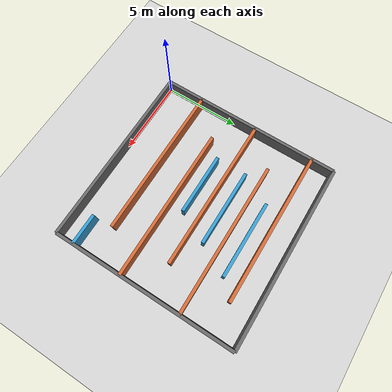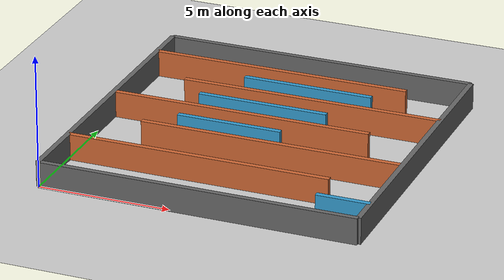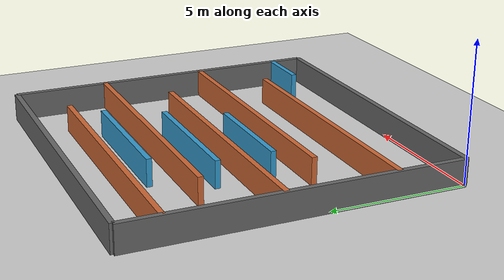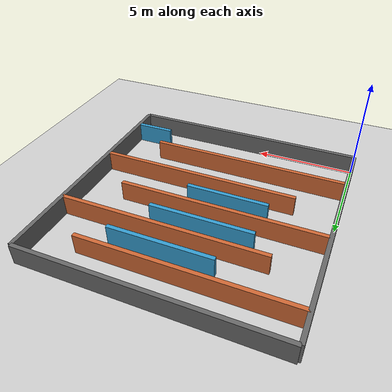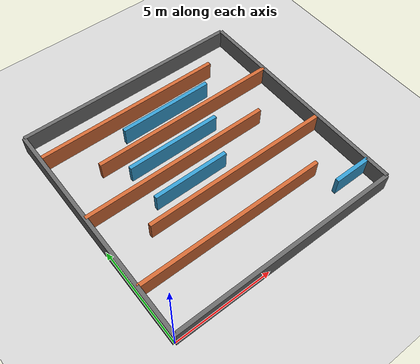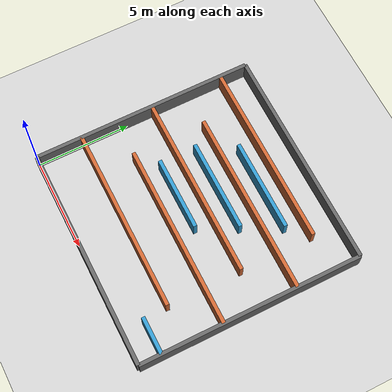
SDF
<?xml version="1.0" ?>
<sdf version="1.8">
  <world name="complex_maze_world">
    <physics name="1ms" type="ignored">
      <max_step_size>0.001</max_step_size>
      <real_time_factor>1.0</real_time_factor>
    </physics>
    <plugin filename="libignition-gazebo-physics-system.so"
            name="ignition::gazebo::systems::Physics"></plugin>
    <plugin filename="libignition-gazebo-user-commands-system.so"
            name="ignition::gazebo::systems::UserCommands"></plugin>
    <plugin filename="libignition-gazebo-scene-broadcaster-system.so"
            name="ignition::gazebo::systems::SceneBroadcaster"></plugin>

    <!-- Sensors plugin: required for LiDAR and all sensor processing in Gazebo Sim -->
    <plugin filename="libignition-gazebo-sensors-system.so"
            name="ignition::gazebo::systems::Sensors">
      <render_engine>ogre2</render_engine>
    </plugin>
   <plugin filename="gz-sim-pose-publisher-system"  	name="gz::sim::systems::PosePublisher">
 	 <publish_model_pose>true</publish_model_pose>
  	<publish_nested_model>true</publish_nested_model>
    </plugin>

    <light type="directional" name="sun">
      <cast_shadows>true</cast_shadows>
      <pose>0 0 10 0 0 0</pose>
      <diffuse>0.8 0.8 0.8 1</diffuse>
      <specular>0.2 0.2 0.2 1</specular>
      <attenuation>
        <range>1000</range><constant>0.9</constant>
        <linear>0.01</linear><quadratic>0.001</quadratic>
      </attenuation>
      <direction>-0.5 0.1 -0.9</direction>
    </light>

    <model name="ground_plane">
      <static>true</static>
      <link name="link">
        <collision name="collision">
          <geometry><plane><normal>0 0 1</normal><size>100 100</size></plane></geometry>
        </collision>
        <visual name="visual">
          <geometry><plane><normal>0 0 1</normal><size>100 100</size></plane></geometry>
          <material>
            <ambient>0.8 0.8 0.8 1</ambient><diffuse>0.8 0.8 0.8 1</diffuse>
          </material>
        </visual>
      </link>
    </model>

    <!-- ═══════════════════════════════════════════════════════════
         OUTER BOUNDARY WALLS  (12 × 12 m arena)
         ═══════════════════════════════════════════════════════════ -->
    <model name="outer_south">
      <pose>6 0 0.5 0 0 0</pose><static>true</static>
      <link name="link">
        <collision name="c"><geometry><box><size>12 0.2 1</size></box></geometry></collision>
        <visual name="v"><geometry><box><size>12 0.2 1</size></box></geometry>
          <material><ambient>0.4 0.4 0.4 1</ambient><diffuse>0.4 0.4 0.4 1</diffuse></material>
        </visual>
      </link>
    </model>
    <model name="outer_north">
      <pose>6 12 0.5 0 0 0</pose><static>true</static>
      <link name="link">
        <collision name="c"><geometry><box><size>12 0.2 1</size></box></geometry></collision>
        <visual name="v"><geometry><box><size>12 0.2 1</size></box></geometry>
          <material><ambient>0.4 0.4 0.4 1</ambient><diffuse>0.4 0.4 0.4 1</diffuse></material>
        </visual>
      </link>
    </model>
    <model name="outer_west">
      <pose>0 6 0.5 0 0 1.5708</pose><static>true</static>
      <link name="link">
        <collision name="c"><geometry><box><size>12 0.2 1</size></box></geometry></collision>
        <visual name="v"><geometry><box><size>12 0.2 1</size></box></geometry>
          <material><ambient>0.4 0.4 0.4 1</ambient><diffuse>0.4 0.4 0.4 1</diffuse></material>
        </visual>
      </link>
    </model>
    <model name="outer_east">
      <pose>12 6 0.5 0 0 1.5708</pose><static>true</static>
      <link name="link">
        <collision name="c"><geometry><box><size>12 0.2 1</size></box></geometry></collision>
        <visual name="v"><geometry><box><size>12 0.2 1</size></box></geometry>
          <material><ambient>0.4 0.4 0.4 1</ambient><diffuse>0.4 0.4 0.4 1</diffuse></material>
        </visual>
      </link>
    </model>

    <!-- H1: y=2.5, x=0..10, gap RIGHT -->
    <model name="h1">
      <pose>5 2.5 0.5 0 0 0</pose><static>true</static>
      <link name="link">
        <collision name="c"><geometry><box><size>10 0.2 1</size></box></geometry></collision>
        <visual name="v"><geometry><box><size>10 0.2 1</size></box></geometry>
          <material><ambient>0.8 0.4 0.2 1</ambient><diffuse>0.8 0.4 0.2 1</diffuse></material>
        </visual>
      </link>
    </model>

    <!-- H2: y=4.5, x=2..12, gap LEFT -->
    <model name="h2">
      <pose>7 4.5 0.5 0 0 0</pose><static>true</static>
      <link name="link">
        <collision name="c"><geometry><box><size>10 0.2 1</size></box></geometry></collision>
        <visual name="v"><geometry><box><size>10 0.2 1</size></box></geometry>
          <material><ambient>0.8 0.4 0.2 1</ambient><diffuse>0.8 0.4 0.2 1</diffuse></material>
        </visual>
      </link>
    </model>

    <!-- H3: y=6.5, x=0..10, gap RIGHT -->
    <model name="h3">
      <pose>5 6.5 0.5 0 0 0</pose><static>true</static>
      <link name="link">
        <collision name="c"><geometry><box><size>10 0.2 1</size></box></geometry></collision>
        <visual name="v"><geometry><box><size>10 0.2 1</size></box></geometry>
          <material><ambient>0.8 0.4 0.2 1</ambient><diffuse>0.8 0.4 0.2 1</diffuse></material>
        </visual>
      </link>
    </model>

    <!-- H4: y=8.5, x=2..12, gap LEFT -->
    <model name="h4">
      <pose>7 8.5 0.5 0 0 0</pose><static>true</static>
      <link name="link">
        <collision name="c"><geometry><box><size>10 0.2 1</size></box></geometry></collision>
        <visual name="v"><geometry><box><size>10 0.2 1</size></box></geometry>
          <material><ambient>0.8 0.4 0.2 1</ambient><diffuse>0.8 0.4 0.2 1</diffuse></material>
        </visual>
      </link>
    </model>

    <!-- H5: y=10.5, x=0..10, gap RIGHT -->
    <model name="h5">
      <pose>5 10.5 0.5 0 0 0</pose><static>true</static>
      <link name="link">
        <collision name="c"><geometry><box><size>10 0.2 1</size></box></geometry></collision>
        <visual name="v"><geometry><box><size>10 0.2 1</size></box></geometry>
          <material><ambient>0.8 0.4 0.2 1</ambient><diffuse>0.8 0.4 0.2 1</diffuse></material>
        </visual>
      </link>
    </model>

    <!-- ═══════════════════════════════════════════════════════════
         CHALLENGE FEATURES
         ═══════════════════════════════════════════════════════════ -->

    <!-- Dead-end stub: bottom-right zone (x=10..12, y=0..2.5)
         Short wall at y=1.2 creates a pocket below it.
         Main path passes above y=1.2 in this zone — not affected. -->
    <model name="dead_end_stub">
      <pose>11 1.2 0.5 0 0 0</pose><static>true</static>
      <link name="link">
        <collision name="c"><geometry><box><size>2 0.2 1</size></box></geometry></collision>
        <visual name="v"><geometry><box><size>2 0.2 1</size></box></geometry>
          <material><ambient>0.2 0.6 0.8 1</ambient><diffuse>0.2 0.6 0.8 1</diffuse></material>
        </visual>
      </link>
    </model>

    <!-- Stub wall 1: corridor between H2 and H3 (y=4.5..6.5)
         Short horizontal wall at y=5.5, x=3..7 — open at both ends.
         Forces robot to navigate around it. -->
    <model name="stub1">
      <pose>5 5.5 0.5 0 0 0</pose><static>true</static>
      <link name="link">
        <collision name="c"><geometry><box><size>4 0.2 1</size></box></geometry></collision>
        <visual name="v"><geometry><box><size>4 0.2 1</size></box></geometry>
          <material><ambient>0.2 0.6 0.8 1</ambient><diffuse>0.2 0.6 0.8 1</diffuse></material>
        </visual>
      </link>
    </model>

    <!-- Stub wall 2: corridor between H3 and H4 (y=6.5..8.5)
         Short horizontal wall at y=7.5, x=3..8 — open at both ends. -->
    <model name="stub2">
      <pose>5.5 7.5 0.5 0 0 0</pose><static>true</static>
      <link name="link">
        <collision name="c"><geometry><box><size>5 0.2 1</size></box></geometry></collision>
        <visual name="v"><geometry><box><size>5 0.2 1</size></box></geometry>
          <material><ambient>0.2 0.6 0.8 1</ambient><diffuse>0.2 0.6 0.8 1</diffuse></material>
        </visual>
      </link>
    </model>

    <!-- Stub wall 3: corridor between H4 and H5 (y=8.5..10.5)
         Short horizontal wall at y=9.5, x=4..9 — open at both ends. -->
    <model name="stub3">
      <pose>6.5 9.5 0.5 0 0 0</pose><static>true</static>
      <link name="link">
        <collision name="c"><geometry><box><size>5 0.2 1</size></box></geometry></collision>
        <visual name="v"><geometry><box><size>5 0.2 1</size></box></geometry>
          <material><ambient>0.2 0.6 0.8 1</ambient><diffuse>0.2 0.6 0.8 1</diffuse></material>
        </visual>
      </link>
    </model>

  </world>
</sdf>
